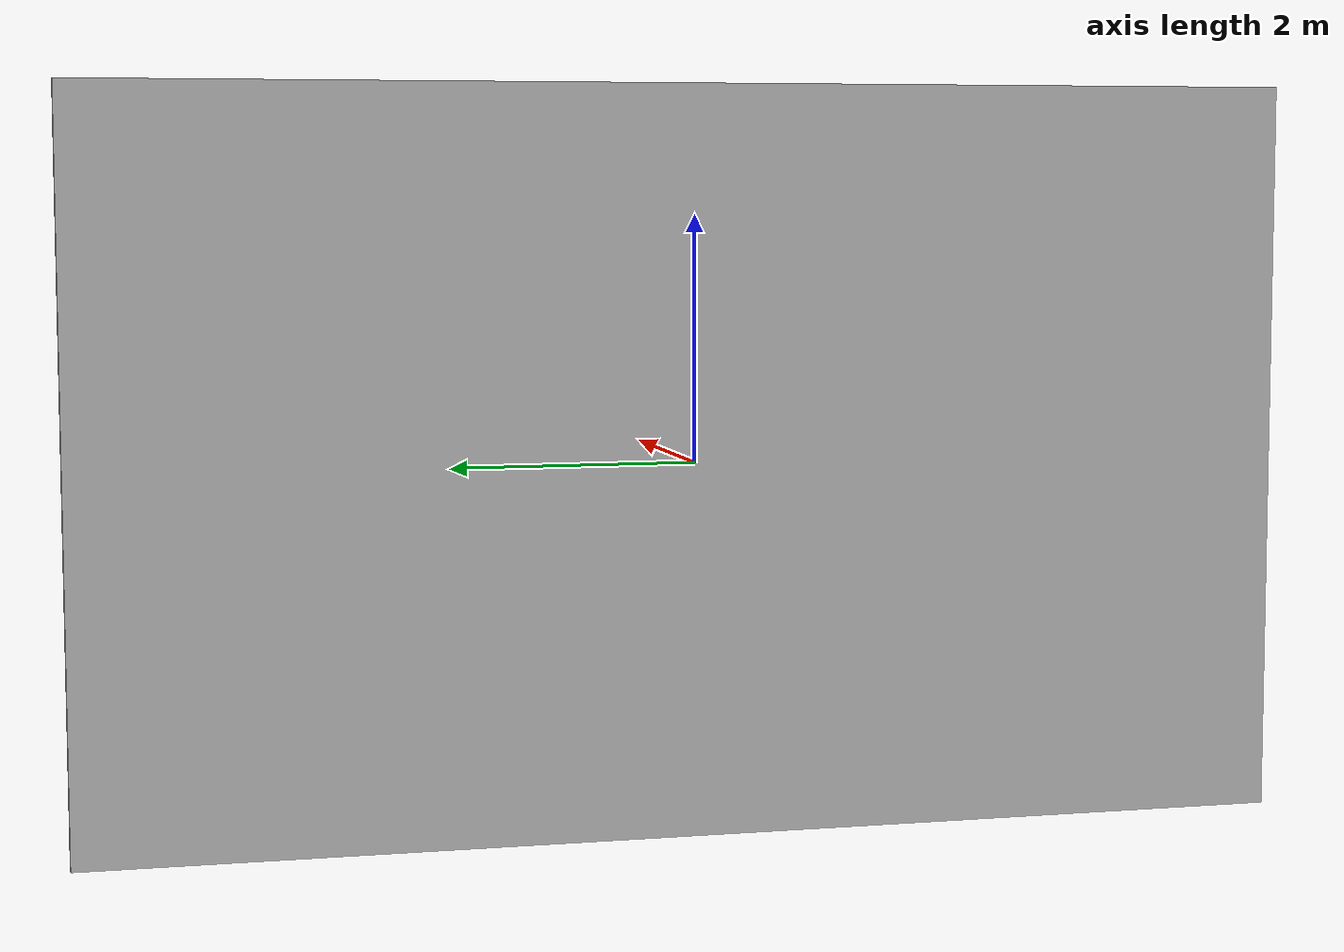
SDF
<?xml version="1.0"?>
<sdf version="1.6">
  <model name="wall">
    <static>true</static>

    <link name="wall_link">
      <pose>0 0 0 0 0 0</pose>

      <visual name="wall_visual">
        <geometry>
          <box>
            <size>0.2 10.0 6.096</size>
          </box>
        </geometry>
        <material>
          <ambient>0.65 0.65 0.65 1</ambient>
          <diffuse>0.65 0.65 0.65 1</diffuse>
          <specular>0.05 0.05 0.05 1</specular>
        </material>
      </visual>

      <collision name="wall_collision">
        <geometry>
          <box>
            <size>0.2 10.0 6.096</size>
          </box>
        </geometry>
        <surface>
          <friction>
            <ode>
              <mu>0.6</mu>
              <mu2>0.6</mu2>
            </ode>
            <bullet>
              <friction>0.6</friction>
              <friction2>0.6</friction2>
            </bullet>
          </friction>
        </surface>
      </collision>
    </link>
  </model>
</sdf>
